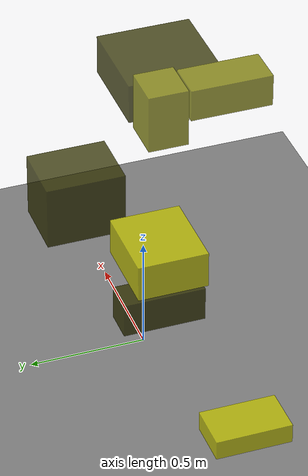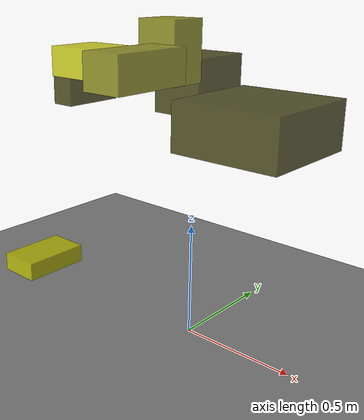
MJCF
<?xml version="1.0"?>
<mujoco model="obstacle_scene">
  <compiler angle="radian" coordinate="local"/>
  <option timestep="0.001" gravity="0 0 -9.81"/>

  <asset>
    <material name="obstacle_mat" rgba="0.8 0.8 0.0 0.8"/>
    <material name="ground_mat" rgba="0.5 0.5 0.5 1"/>
  </asset>

  <worldbody>
    <!-- Ground plane -->
    <geom name="ground" type="plane" size="3 3 0.1" material="ground_mat"/>

    <!-- Obstacles -->
    <body name="obstacle_0" pos="-0.932606 0.268157 0.952853">
      <geom name="obs_0" type="box" size="0.062629 0.161280 0.069922" rgba="0.2 0.2 0.0 0.8"/>
    </body>
    <body name="obstacle_1" pos="0.007398 -0.349939 1.197831">
      <geom name="obs_1" type="box" size="0.084814 0.174519 0.069844" rgba="0.5 0.5 0.0 0.8"/>
    </body>
    <body name="obstacle_2" pos="-0.825369 0.230961 1.102394">
      <geom name="obs_2" type="box" size="0.160683 0.138690 0.074742" rgba="0.8 0.8 0.0 0.8"/>
    </body>
    <body name="obstacle_3" pos="0.442578 -0.227367 1.038542">
      <geom name="obs_3" type="box" size="0.201271 0.204208 0.088596" rgba="0.2 0.2 0.0 0.8"/>
    </body>
    <body name="obstacle_4" pos="-0.098529 -0.038907 1.227204">
      <geom name="obs_4" type="box" size="0.091562 0.083739 0.126244" rgba="0.5 0.5 0.0 0.8"/>
    </body>
    <body name="obstacle_5" pos="-0.833939 -0.135980 0.148583">
      <geom name="obs_5" type="box" size="0.098968 0.161497 0.042826" rgba="0.8 0.8 0.0 0.8"/>
    </body>
    <body name="obstacle_6" pos="-0.273945 0.374833 1.036547">
      <geom name="obs_6" type="box" size="0.126753 0.159769 0.131758" rgba="0.2 0.2 0.0 0.8"/>
    </body>
  </worldbody>
</mujoco>
